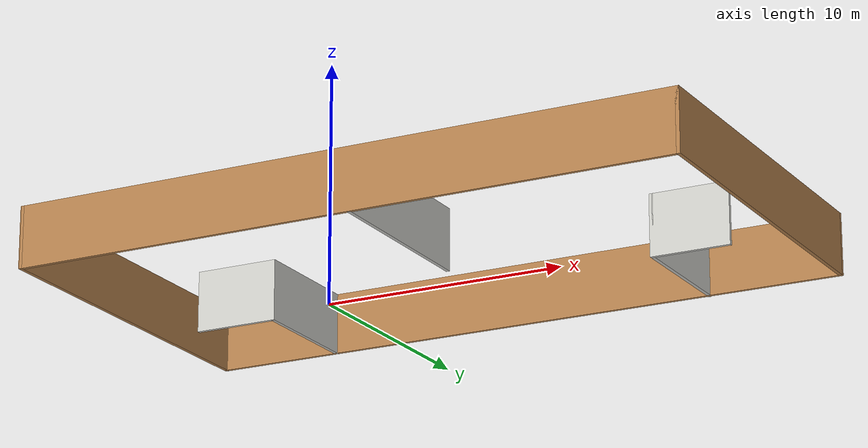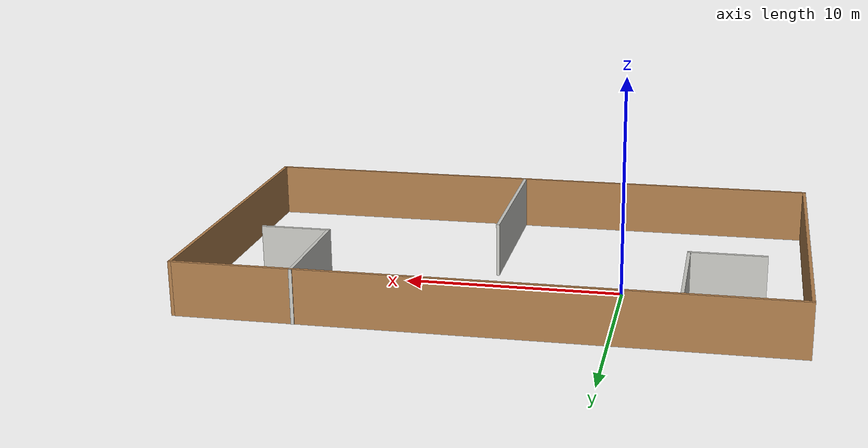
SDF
<?xml version='1.0'?>
<sdf version='1.7'>
  <model name='house'>
    <pose>5.3822 -1.64077 0 0 -0 0</pose>
    <link name='Wall_1'>
      <collision name='Wall_1_Collision'>
        <geometry>
          <box>
            <size>15.25 0.15 2.5</size>
          </box>
        </geometry>
        <pose>0 0 1.25 0 -0 0</pose>
      </collision>
      <visual name='Wall_1_Visual'>
        <pose>0 0 1.25 0 -0 0</pose>
        <geometry>
          <box>
            <size>15.25 0.15 2.5</size>
          </box>
        </geometry>
        <material>
          <script>
            <uri>file://media/materials/scripts/gazebo.material</uri>
            <name>Gazebo/Wood</name>
          </script>
          <ambient>1 1 1 1</ambient>
        </material>
        <meta>
          <layer>0</layer>
        </meta>
      </visual>
      <pose>-13.55 -0.021242 0 0 -0 -1.5708</pose>
    </link>
    <link name='Wall_10'>
      <collision name='Wall_10_Collision'>
        <geometry>
          <box>
            <size>7.75 0.15 2.5</size>
          </box>
        </geometry>
        <pose>0 0 1.25 0 -0 0</pose>
      </collision>
      <visual name='Wall_10_Visual'>
        <pose>0 0 1.25 0 -0 0</pose>
        <geometry>
          <box>
            <size>7.75 0.15 2.5</size>
          </box>
        </geometry>
        <material>
          <script>
            <uri>file://media/materials/scripts/gazebo.material</uri>
            <name>Gazebo/CeilingTiled</name>
          </script>
          <ambient>1 1 1 1</ambient>
        </material>
        <meta>
          <layer>0</layer>
        </meta>
      </visual>
      <pose>0.585848 -3.70309 0 0 -0 1.5708</pose>
    </link>
    <link name='Wall_12'>
      <collision name='Wall_12_Collision'>
        <geometry>
          <box>
            <size>5.5 0.15 2.5</size>
          </box>
        </geometry>
        <pose>0 0 1.25 0 -0 0</pose>
      </collision>
      <visual name='Wall_12_Visual'>
        <pose>0 0 1.25 0 -0 0</pose>
        <geometry>
          <box>
            <size>5.5 0.15 2.5</size>
          </box>
        </geometry>
        <material>
          <script>
            <uri>file://media/materials/scripts/gazebo.material</uri>
            <name>Gazebo/CeilingTiled</name>
          </script>
          <ambient>1 1 1 1</ambient>
        </material>
        <meta>
          <layer>0</layer>
        </meta>
      </visual>
      <pose>8.12301 4.89624 0 0 -0 -1.5708</pose>
    </link>
    <link name='Wall_13'>
      <collision name='Wall_13_Collision'>
        <geometry>
          <box>
            <size>3.25 0.15 2.5</size>
          </box>
        </geometry>
        <pose>0 0 1.25 0 -0 0</pose>
      </collision>
      <visual name='Wall_13_Visual'>
        <pose>0 0 1.25 0 -0 0</pose>
        <geometry>
          <box>
            <size>3.25 0.15 2.5</size>
          </box>
        </geometry>
        <material>
          <script>
            <uri>file://media/materials/scripts/gazebo.material</uri>
            <name>Gazebo/CeilingTiled</name>
          </script>
          <ambient>1 1 1 1</ambient>
        </material>
        <meta>
          <layer>0</layer>
        </meta>
      </visual>
      <pose>9.67301 2.22124 0 0 -0 0</pose>
    </link>
    <link name='Wall_2'>
      <collision name='Wall_2_Collision'>
        <geometry>
          <box>
            <size>27.25 0.15 2.5</size>
          </box>
        </geometry>
        <pose>0 0 1.25 0 -0 0</pose>
      </collision>
      <visual name='Wall_2_Visual'>
        <pose>0 0 1.25 0 -0 0</pose>
        <geometry>
          <box>
            <size>27.25 0.15 2.5</size>
          </box>
        </geometry>
        <material>
          <script>
            <uri>file://media/materials/scripts/gazebo.material</uri>
            <name>Gazebo/Wood</name>
          </script>
          <ambient>1 1 1 1</ambient>
        </material>
        <meta>
          <layer>0</layer>
        </meta>
      </visual>
      <pose>0 -7.57124 0 0 -0 0</pose>
    </link>
    <link name='Wall_3'>
      <collision name='Wall_3_Collision'>
        <geometry>
          <box>
            <size>15.25 0.15 2.5</size>
          </box>
        </geometry>
        <pose>0 0 1.25 0 -0 0</pose>
      </collision>
      <visual name='Wall_3_Visual'>
        <pose>0 0 1.25 0 -0 0</pose>
        <geometry>
          <box>
            <size>15.25 0.15 2.5</size>
          </box>
        </geometry>
        <material>
          <script>
            <uri>file://media/materials/scripts/gazebo.material</uri>
            <name>Gazebo/Wood</name>
          </script>
          <ambient>1 1 1 1</ambient>
        </material>
        <meta>
          <layer>0</layer>
        </meta>
      </visual>
      <pose>13.55 -0.021242 0 0 -0 1.5708</pose>
    </link>
    <link name='Wall_4'>
      <collision name='Wall_4_Collision'>
        <geometry>
          <box>
            <size>27.25 0.15 2.5</size>
          </box>
        </geometry>
        <pose>0 0 1.25 0 -0 0</pose>
      </collision>
      <visual name='Wall_4_Visual'>
        <pose>0 0 1.25 0 -0 0</pose>
        <geometry>
          <box>
            <size>27.25 0.15 2.5</size>
          </box>
        </geometry>
        <material>
          <script>
            <uri>file://media/materials/scripts/gazebo.material</uri>
            <name>Gazebo/Wood</name>
          </script>
          <ambient>1 1 1 1</ambient>
        </material>
        <meta>
          <layer>0</layer>
        </meta>
      </visual>
      <pose>0 7.52876 0 0 -0 3.14159</pose>
    </link>
    <link name='Wall_6'>
      <collision name='Wall_6_Collision'>
        <geometry>
          <box>
            <size>5.25 0.15 2.5</size>
          </box>
        </geometry>
        <pose>0 0 1.25 0 -0 0</pose>
      </collision>
      <visual name='Wall_6_Visual'>
        <pose>0 0 1.25 0 -0 0</pose>
        <geometry>
          <box>
            <size>5.25 0.15 2.5</size>
          </box>
        </geometry>
        <material>
          <script>
            <uri>file://media/materials/scripts/gazebo.material</uri>
            <name>Gazebo/CeilingTiled</name>
          </script>
          <ambient>1 1 1 1</ambient>
        </material>
        <meta>
          <layer>0</layer>
        </meta>
      </visual>
      <pose>-8.35857 4.9566 0 0 -0 -1.5708</pose>
    </link>
    <link name='Wall_7'>
      <collision name='Wall_7_Collision'>
        <geometry>
          <box>
            <size>3.5 0.15 2.5</size>
          </box>
        </geometry>
        <pose>0 0 1.25 0 -0 0</pose>
      </collision>
      <visual name='Wall_7_Visual'>
        <pose>0 0 1.25 0 -0 0</pose>
        <geometry>
          <box>
            <size>3.5 0.15 2.5</size>
          </box>
        </geometry>
        <material>
          <script>
            <uri>file://media/materials/scripts/gazebo.material</uri>
            <name>Gazebo/CeilingTiled</name>
          </script>
          <ambient>1 1 1 1</ambient>
        </material>
        <meta>
          <layer>0</layer>
        </meta>
      </visual>
      <pose>-10.0336 2.4066 0 0 -0 3.14159</pose>
    </link>
    <static>1</static>
  </model>
</sdf>
